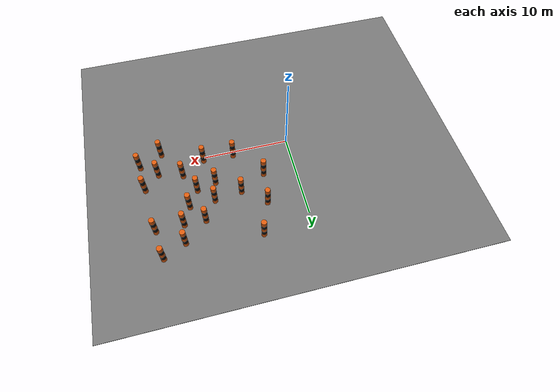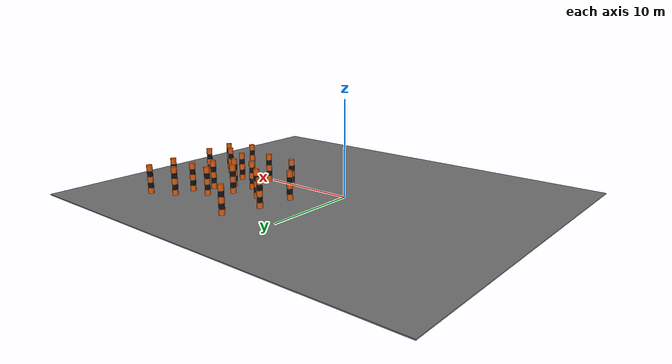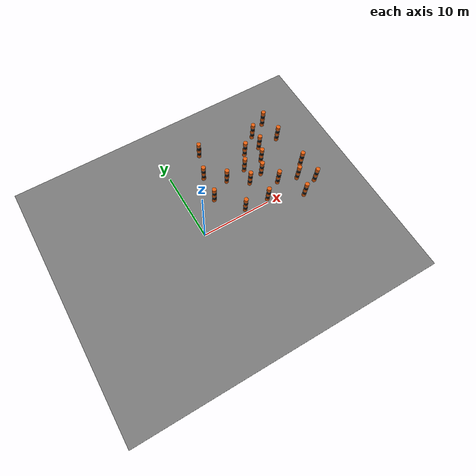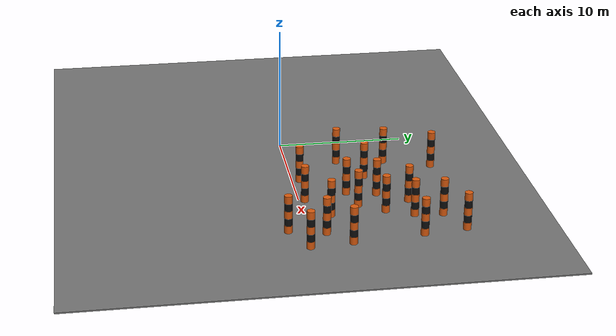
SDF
<sdf version="1.6">
 <world name="medium_forest_striped_poles_passable_0p10_per_m2">
  <model name="ground">
   <static>true</static>
   <pose>2 0 -0.05 0 0 0</pose>
   <link name="link">
    <collision name="collision">
     <geometry><box><size>44 37 0.1</size></box></geometry>
     <surface><friction><ode><mu>1.0</mu><mu2>1.0</mu2></ode></friction></surface>
    </collision>
    <visual name="visual">
     <geometry><box><size>44 37 0.1</size></box></geometry>
     <material>
      <ambient>0.45 0.45 0.45 1</ambient>
      <diffuse>0.45 0.45 0.45 1</diffuse>
      <specular>0.02 0.02 0.02 1</specular>
     </material>
    </visual>
   </link>
  </model>
  <model name="passable_striped_pole_003">
   <static>true</static>
   <pose>9.425 3.811 0 0 0 0</pose>
   <link name="link">
    <collision name="collision">
     <pose>0 0 1.5 0 0 0</pose>
     <geometry><cylinder><radius>0.30</radius><length>3.0</length></cylinder></geometry>
     <surface>
      <contact><ode><kp>1000000</kp><kd>100</kd><max_vel>0.01</max_vel><min_depth>0.001</min_depth></ode></contact>
      <friction><ode><mu>1.0</mu><mu2>1.0</mu2></ode></friction>
     </surface>
    </collision>
    <visual name="band_1">
     <pose>0 0 0.3 0 0 0</pose>
     <geometry><cylinder><radius>0.30</radius><length>0.6</length></cylinder></geometry>
     <material>
      <ambient>0.85 0.35 0.05 1</ambient>
      <diffuse>0.85 0.35 0.05 1</diffuse>
      <specular>0.02 0.02 0.02 1</specular>
     </material>
    </visual>
    <visual name="band_2">
     <pose>0 0 0.9 0 0 0</pose>
     <geometry><cylinder><radius>0.30</radius><length>0.6</length></cylinder></geometry>
     <material>
      <ambient>0.05 0.05 0.05 1</ambient>
      <diffuse>0.05 0.05 0.05 1</diffuse>
      <specular>0.02 0.02 0.02 1</specular>
     </material>
    </visual>
    <visual name="band_3">
     <pose>0 0 1.5 0 0 0</pose>
     <geometry><cylinder><radius>0.30</radius><length>0.6</length></cylinder></geometry>
     <material>
      <ambient>0.85 0.35 0.05 1</ambient>
      <diffuse>0.85 0.35 0.05 1</diffuse>
      <specular>0.02 0.02 0.02 1</specular>
     </material>
    </visual>
    <visual name="band_4">
     <pose>0 0 2.1 0 0 0</pose>
     <geometry><cylinder><radius>0.30</radius><length>0.6</length></cylinder></geometry>
     <material>
      <ambient>0.05 0.05 0.05 1</ambient>
      <diffuse>0.05 0.05 0.05 1</diffuse>
      <specular>0.02 0.02 0.02 1</specular>
     </material>
    </visual>
    <visual name="band_5">
     <pose>0 0 2.7 0 0 0</pose>
     <geometry><cylinder><radius>0.30</radius><length>0.6</length></cylinder></geometry>
     <material>
      <ambient>0.85 0.35 0.05 1</ambient>
      <diffuse>0.85 0.35 0.05 1</diffuse>
      <specular>0.02 0.02 0.02 1</specular>
     </material>
    </visual>
   </link>
  </model>
  <model name="passable_striped_pole_008">
   <static>true</static>
   <pose>6.706 0.597 0 0 0 0</pose>
   <link name="link">
    <collision name="collision">
     <pose>0 0 1.5 0 0 0</pose>
     <geometry><cylinder><radius>0.30</radius><length>3.0</length></cylinder></geometry>
     <surface>
      <contact><ode><kp>1000000</kp><kd>100</kd><max_vel>0.01</max_vel><min_depth>0.001</min_depth></ode></contact>
      <friction><ode><mu>1.0</mu><mu2>1.0</mu2></ode></friction>
     </surface>
    </collision>
    <visual name="band_1">
     <pose>0 0 0.3 0 0 0</pose>
     <geometry><cylinder><radius>0.30</radius><length>0.6</length></cylinder></geometry>
     <material>
      <ambient>0.85 0.35 0.05 1</ambient>
      <diffuse>0.85 0.35 0.05 1</diffuse>
      <specular>0.02 0.02 0.02 1</specular>
     </material>
    </visual>
    <visual name="band_2">
     <pose>0 0 0.9 0 0 0</pose>
     <geometry><cylinder><radius>0.30</radius><length>0.6</length></cylinder></geometry>
     <material>
      <ambient>0.05 0.05 0.05 1</ambient>
      <diffuse>0.05 0.05 0.05 1</diffuse>
      <specular>0.02 0.02 0.02 1</specular>
     </material>
    </visual>
    <visual name="band_3">
     <pose>0 0 1.5 0 0 0</pose>
     <geometry><cylinder><radius>0.30</radius><length>0.6</length></cylinder></geometry>
     <material>
      <ambient>0.85 0.35 0.05 1</ambient>
      <diffuse>0.85 0.35 0.05 1</diffuse>
      <specular>0.02 0.02 0.02 1</specular>
     </material>
    </visual>
    <visual name="band_4">
     <pose>0 0 2.1 0 0 0</pose>
     <geometry><cylinder><radius>0.30</radius><length>0.6</length></cylinder></geometry>
     <material>
      <ambient>0.05 0.05 0.05 1</ambient>
      <diffuse>0.05 0.05 0.05 1</diffuse>
      <specular>0.02 0.02 0.02 1</specular>
     </material>
    </visual>
    <visual name="band_5">
     <pose>0 0 2.7 0 0 0</pose>
     <geometry><cylinder><radius>0.30</radius><length>0.6</length></cylinder></geometry>
     <material>
      <ambient>0.85 0.35 0.05 1</ambient>
      <diffuse>0.85 0.35 0.05 1</diffuse>
      <specular>0.02 0.02 0.02 1</specular>
     </material>
    </visual>
   </link>
  </model>
  <model name="passable_striped_pole_010">
   <static>true</static>
   <pose>11.603 4.335 0 0 0 0</pose>
   <link name="link">
    <collision name="collision">
     <pose>0 0 1.5 0 0 0</pose>
     <geometry><cylinder><radius>0.30</radius><length>3.0</length></cylinder></geometry>
     <surface>
      <contact><ode><kp>1000000</kp><kd>100</kd><max_vel>0.01</max_vel><min_depth>0.001</min_depth></ode></contact>
      <friction><ode><mu>1.0</mu><mu2>1.0</mu2></ode></friction>
     </surface>
    </collision>
    <visual name="band_1">
     <pose>0 0 0.3 0 0 0</pose>
     <geometry><cylinder><radius>0.30</radius><length>0.6</length></cylinder></geometry>
     <material>
      <ambient>0.85 0.35 0.05 1</ambient>
      <diffuse>0.85 0.35 0.05 1</diffuse>
      <specular>0.02 0.02 0.02 1</specular>
     </material>
    </visual>
    <visual name="band_2">
     <pose>0 0 0.9 0 0 0</pose>
     <geometry><cylinder><radius>0.30</radius><length>0.6</length></cylinder></geometry>
     <material>
      <ambient>0.05 0.05 0.05 1</ambient>
      <diffuse>0.05 0.05 0.05 1</diffuse>
      <specular>0.02 0.02 0.02 1</specular>
     </material>
    </visual>
    <visual name="band_3">
     <pose>0 0 1.5 0 0 0</pose>
     <geometry><cylinder><radius>0.30</radius><length>0.6</length></cylinder></geometry>
     <material>
      <ambient>0.85 0.35 0.05 1</ambient>
      <diffuse>0.85 0.35 0.05 1</diffuse>
      <specular>0.02 0.02 0.02 1</specular>
     </material>
    </visual>
    <visual name="band_4">
     <pose>0 0 2.1 0 0 0</pose>
     <geometry><cylinder><radius>0.30</radius><length>0.6</length></cylinder></geometry>
     <material>
      <ambient>0.05 0.05 0.05 1</ambient>
      <diffuse>0.05 0.05 0.05 1</diffuse>
      <specular>0.02 0.02 0.02 1</specular>
     </material>
    </visual>
    <visual name="band_5">
     <pose>0 0 2.7 0 0 0</pose>
     <geometry><cylinder><radius>0.30</radius><length>0.6</length></cylinder></geometry>
     <material>
      <ambient>0.85 0.35 0.05 1</ambient>
      <diffuse>0.85 0.35 0.05 1</diffuse>
      <specular>0.02 0.02 0.02 1</specular>
     </material>
    </visual>
   </link>
  </model>
  <model name="passable_striped_pole_014">
   <static>true</static>
   <pose>12.911 2.031 0 0 0 0</pose>
   <link name="link">
    <collision name="collision">
     <pose>0 0 1.5 0 0 0</pose>
     <geometry><cylinder><radius>0.30</radius><length>3.0</length></cylinder></geometry>
     <surface>
      <contact><ode><kp>1000000</kp><kd>100</kd><max_vel>0.01</max_vel><min_depth>0.001</min_depth></ode></contact>
      <friction><ode><mu>1.0</mu><mu2>1.0</mu2></ode></friction>
     </surface>
    </collision>
    <visual name="band_1">
     <pose>0 0 0.3 0 0 0</pose>
     <geometry><cylinder><radius>0.30</radius><length>0.6</length></cylinder></geometry>
     <material>
      <ambient>0.85 0.35 0.05 1</ambient>
      <diffuse>0.85 0.35 0.05 1</diffuse>
      <specular>0.02 0.02 0.02 1</specular>
     </material>
    </visual>
    <visual name="band_2">
     <pose>0 0 0.9 0 0 0</pose>
     <geometry><cylinder><radius>0.30</radius><length>0.6</length></cylinder></geometry>
     <material>
      <ambient>0.05 0.05 0.05 1</ambient>
      <diffuse>0.05 0.05 0.05 1</diffuse>
      <specular>0.02 0.02 0.02 1</specular>
     </material>
    </visual>
    <visual name="band_3">
     <pose>0 0 1.5 0 0 0</pose>
     <geometry><cylinder><radius>0.30</radius><length>0.6</length></cylinder></geometry>
     <material>
      <ambient>0.85 0.35 0.05 1</ambient>
      <diffuse>0.85 0.35 0.05 1</diffuse>
      <specular>0.02 0.02 0.02 1</specular>
     </material>
    </visual>
    <visual name="band_4">
     <pose>0 0 2.1 0 0 0</pose>
     <geometry><cylinder><radius>0.30</radius><length>0.6</length></cylinder></geometry>
     <material>
      <ambient>0.05 0.05 0.05 1</ambient>
      <diffuse>0.05 0.05 0.05 1</diffuse>
      <specular>0.02 0.02 0.02 1</specular>
     </material>
    </visual>
    <visual name="band_5">
     <pose>0 0 2.7 0 0 0</pose>
     <geometry><cylinder><radius>0.30</radius><length>0.6</length></cylinder></geometry>
     <material>
      <ambient>0.85 0.35 0.05 1</ambient>
      <diffuse>0.85 0.35 0.05 1</diffuse>
      <specular>0.02 0.02 0.02 1</specular>
     </material>
    </visual>
   </link>
  </model>
  <model name="passable_striped_pole_023">
   <static>true</static>
   <pose>17.371 2.916 0 0 0 0</pose>
   <link name="link">
    <collision name="collision">
     <pose>0 0 1.5 0 0 0</pose>
     <geometry><cylinder><radius>0.30</radius><length>3.0</length></cylinder></geometry>
     <surface>
      <contact><ode><kp>1000000</kp><kd>100</kd><max_vel>0.01</max_vel><min_depth>0.001</min_depth></ode></contact>
      <friction><ode><mu>1.0</mu><mu2>1.0</mu2></ode></friction>
     </surface>
    </collision>
    <visual name="band_1">
     <pose>0 0 0.3 0 0 0</pose>
     <geometry><cylinder><radius>0.30</radius><length>0.6</length></cylinder></geometry>
     <material>
      <ambient>0.85 0.35 0.05 1</ambient>
      <diffuse>0.85 0.35 0.05 1</diffuse>
      <specular>0.02 0.02 0.02 1</specular>
     </material>
    </visual>
    <visual name="band_2">
     <pose>0 0 0.9 0 0 0</pose>
     <geometry><cylinder><radius>0.30</radius><length>0.6</length></cylinder></geometry>
     <material>
      <ambient>0.05 0.05 0.05 1</ambient>
      <diffuse>0.05 0.05 0.05 1</diffuse>
      <specular>0.02 0.02 0.02 1</specular>
     </material>
    </visual>
    <visual name="band_3">
     <pose>0 0 1.5 0 0 0</pose>
     <geometry><cylinder><radius>0.30</radius><length>0.6</length></cylinder></geometry>
     <material>
      <ambient>0.85 0.35 0.05 1</ambient>
      <diffuse>0.85 0.35 0.05 1</diffuse>
      <specular>0.02 0.02 0.02 1</specular>
     </material>
    </visual>
    <visual name="band_4">
     <pose>0 0 2.1 0 0 0</pose>
     <geometry><cylinder><radius>0.30</radius><length>0.6</length></cylinder></geometry>
     <material>
      <ambient>0.05 0.05 0.05 1</ambient>
      <diffuse>0.05 0.05 0.05 1</diffuse>
      <specular>0.02 0.02 0.02 1</specular>
     </material>
    </visual>
    <visual name="band_5">
     <pose>0 0 2.7 0 0 0</pose>
     <geometry><cylinder><radius>0.30</radius><length>0.6</length></cylinder></geometry>
     <material>
      <ambient>0.85 0.35 0.05 1</ambient>
      <diffuse>0.85 0.35 0.05 1</diffuse>
      <specular>0.02 0.02 0.02 1</specular>
     </material>
    </visual>
   </link>
  </model>
  <model name="passable_striped_pole_024">
   <static>true</static>
   <pose>3.788 4.005 0 0 0 0</pose>
   <link name="link">
    <collision name="collision">
     <pose>0 0 1.5 0 0 0</pose>
     <geometry><cylinder><radius>0.30</radius><length>3.0</length></cylinder></geometry>
     <surface>
      <contact><ode><kp>1000000</kp><kd>100</kd><max_vel>0.01</max_vel><min_depth>0.001</min_depth></ode></contact>
      <friction><ode><mu>1.0</mu><mu2>1.0</mu2></ode></friction>
     </surface>
    </collision>
    <visual name="band_1">
     <pose>0 0 0.3 0 0 0</pose>
     <geometry><cylinder><radius>0.30</radius><length>0.6</length></cylinder></geometry>
     <material>
      <ambient>0.85 0.35 0.05 1</ambient>
      <diffuse>0.85 0.35 0.05 1</diffuse>
      <specular>0.02 0.02 0.02 1</specular>
     </material>
    </visual>
    <visual name="band_2">
     <pose>0 0 0.9 0 0 0</pose>
     <geometry><cylinder><radius>0.30</radius><length>0.6</length></cylinder></geometry>
     <material>
      <ambient>0.05 0.05 0.05 1</ambient>
      <diffuse>0.05 0.05 0.05 1</diffuse>
      <specular>0.02 0.02 0.02 1</specular>
     </material>
    </visual>
    <visual name="band_3">
     <pose>0 0 1.5 0 0 0</pose>
     <geometry><cylinder><radius>0.30</radius><length>0.6</length></cylinder></geometry>
     <material>
      <ambient>0.85 0.35 0.05 1</ambient>
      <diffuse>0.85 0.35 0.05 1</diffuse>
      <specular>0.02 0.02 0.02 1</specular>
     </material>
    </visual>
    <visual name="band_4">
     <pose>0 0 2.1 0 0 0</pose>
     <geometry><cylinder><radius>0.30</radius><length>0.6</length></cylinder></geometry>
     <material>
      <ambient>0.05 0.05 0.05 1</ambient>
      <diffuse>0.05 0.05 0.05 1</diffuse>
      <specular>0.02 0.02 0.02 1</specular>
     </material>
    </visual>
    <visual name="band_5">
     <pose>0 0 2.7 0 0 0</pose>
     <geometry><cylinder><radius>0.30</radius><length>0.6</length></cylinder></geometry>
     <material>
      <ambient>0.85 0.35 0.05 1</ambient>
      <diffuse>0.85 0.35 0.05 1</diffuse>
      <specular>0.02 0.02 0.02 1</specular>
     </material>
    </visual>
   </link>
  </model>
  <model name="passable_striped_pole_025">
   <static>true</static>
   <pose>12.766 6.234 0 0 0 0</pose>
   <link name="link">
    <collision name="collision">
     <pose>0 0 1.5 0 0 0</pose>
     <geometry><cylinder><radius>0.30</radius><length>3.0</length></cylinder></geometry>
     <surface>
      <contact><ode><kp>1000000</kp><kd>100</kd><max_vel>0.01</max_vel><min_depth>0.001</min_depth></ode></contact>
      <friction><ode><mu>1.0</mu><mu2>1.0</mu2></ode></friction>
     </surface>
    </collision>
    <visual name="band_1">
     <pose>0 0 0.3 0 0 0</pose>
     <geometry><cylinder><radius>0.30</radius><length>0.6</length></cylinder></geometry>
     <material>
      <ambient>0.85 0.35 0.05 1</ambient>
      <diffuse>0.85 0.35 0.05 1</diffuse>
      <specular>0.02 0.02 0.02 1</specular>
     </material>
    </visual>
    <visual name="band_2">
     <pose>0 0 0.9 0 0 0</pose>
     <geometry><cylinder><radius>0.30</radius><length>0.6</length></cylinder></geometry>
     <material>
      <ambient>0.05 0.05 0.05 1</ambient>
      <diffuse>0.05 0.05 0.05 1</diffuse>
      <specular>0.02 0.02 0.02 1</specular>
     </material>
    </visual>
    <visual name="band_3">
     <pose>0 0 1.5 0 0 0</pose>
     <geometry><cylinder><radius>0.30</radius><length>0.6</length></cylinder></geometry>
     <material>
      <ambient>0.85 0.35 0.05 1</ambient>
      <diffuse>0.85 0.35 0.05 1</diffuse>
      <specular>0.02 0.02 0.02 1</specular>
     </material>
    </visual>
    <visual name="band_4">
     <pose>0 0 2.1 0 0 0</pose>
     <geometry><cylinder><radius>0.30</radius><length>0.6</length></cylinder></geometry>
     <material>
      <ambient>0.05 0.05 0.05 1</ambient>
      <diffuse>0.05 0.05 0.05 1</diffuse>
      <specular>0.02 0.02 0.02 1</specular>
     </material>
    </visual>
    <visual name="band_5">
     <pose>0 0 2.7 0 0 0</pose>
     <geometry><cylinder><radius>0.30</radius><length>0.6</length></cylinder></geometry>
     <material>
      <ambient>0.85 0.35 0.05 1</ambient>
      <diffuse>0.85 0.35 0.05 1</diffuse>
      <specular>0.02 0.02 0.02 1</specular>
     </material>
    </visual>
   </link>
  </model>
  <model name="passable_striped_pole_028">
   <static>true</static>
   <pose>15.017 -1.504 0 0 0 0</pose>
   <link name="link">
    <collision name="collision">
     <pose>0 0 1.5 0 0 0</pose>
     <geometry><cylinder><radius>0.30</radius><length>3.0</length></cylinder></geometry>
     <surface>
      <contact><ode><kp>1000000</kp><kd>100</kd><max_vel>0.01</max_vel><min_depth>0.001</min_depth></ode></contact>
      <friction><ode><mu>1.0</mu><mu2>1.0</mu2></ode></friction>
     </surface>
    </collision>
    <visual name="band_1">
     <pose>0 0 0.3 0 0 0</pose>
     <geometry><cylinder><radius>0.30</radius><length>0.6</length></cylinder></geometry>
     <material>
      <ambient>0.85 0.35 0.05 1</ambient>
      <diffuse>0.85 0.35 0.05 1</diffuse>
      <specular>0.02 0.02 0.02 1</specular>
     </material>
    </visual>
    <visual name="band_2">
     <pose>0 0 0.9 0 0 0</pose>
     <geometry><cylinder><radius>0.30</radius><length>0.6</length></cylinder></geometry>
     <material>
      <ambient>0.05 0.05 0.05 1</ambient>
      <diffuse>0.05 0.05 0.05 1</diffuse>
      <specular>0.02 0.02 0.02 1</specular>
     </material>
    </visual>
    <visual name="band_3">
     <pose>0 0 1.5 0 0 0</pose>
     <geometry><cylinder><radius>0.30</radius><length>0.6</length></cylinder></geometry>
     <material>
      <ambient>0.85 0.35 0.05 1</ambient>
      <diffuse>0.85 0.35 0.05 1</diffuse>
      <specular>0.02 0.02 0.02 1</specular>
     </material>
    </visual>
    <visual name="band_4">
     <pose>0 0 2.1 0 0 0</pose>
     <geometry><cylinder><radius>0.30</radius><length>0.6</length></cylinder></geometry>
     <material>
      <ambient>0.05 0.05 0.05 1</ambient>
      <diffuse>0.05 0.05 0.05 1</diffuse>
      <specular>0.02 0.02 0.02 1</specular>
     </material>
    </visual>
    <visual name="band_5">
     <pose>0 0 2.7 0 0 0</pose>
     <geometry><cylinder><radius>0.30</radius><length>0.6</length></cylinder></geometry>
     <material>
      <ambient>0.85 0.35 0.05 1</ambient>
      <diffuse>0.85 0.35 0.05 1</diffuse>
      <specular>0.02 0.02 0.02 1</specular>
     </material>
    </visual>
   </link>
  </model>
  <model name="passable_striped_pole_031">
   <static>true</static>
   <pose>17.623 -0.268 0 0 0 0</pose>
   <link name="link">
    <collision name="collision">
     <pose>0 0 1.5 0 0 0</pose>
     <geometry><cylinder><radius>0.30</radius><length>3.0</length></cylinder></geometry>
     <surface>
      <contact><ode><kp>1000000</kp><kd>100</kd><max_vel>0.01</max_vel><min_depth>0.001</min_depth></ode></contact>
      <friction><ode><mu>1.0</mu><mu2>1.0</mu2></ode></friction>
     </surface>
    </collision>
    <visual name="band_1">
     <pose>0 0 0.3 0 0 0</pose>
     <geometry><cylinder><radius>0.30</radius><length>0.6</length></cylinder></geometry>
     <material>
      <ambient>0.85 0.35 0.05 1</ambient>
      <diffuse>0.85 0.35 0.05 1</diffuse>
      <specular>0.02 0.02 0.02 1</specular>
     </material>
    </visual>
    <visual name="band_2">
     <pose>0 0 0.9 0 0 0</pose>
     <geometry><cylinder><radius>0.30</radius><length>0.6</length></cylinder></geometry>
     <material>
      <ambient>0.05 0.05 0.05 1</ambient>
      <diffuse>0.05 0.05 0.05 1</diffuse>
      <specular>0.02 0.02 0.02 1</specular>
     </material>
    </visual>
    <visual name="band_3">
     <pose>0 0 1.5 0 0 0</pose>
     <geometry><cylinder><radius>0.30</radius><length>0.6</length></cylinder></geometry>
     <material>
      <ambient>0.85 0.35 0.05 1</ambient>
      <diffuse>0.85 0.35 0.05 1</diffuse>
      <specular>0.02 0.02 0.02 1</specular>
     </material>
    </visual>
    <visual name="band_4">
     <pose>0 0 2.1 0 0 0</pose>
     <geometry><cylinder><radius>0.30</radius><length>0.6</length></cylinder></geometry>
     <material>
      <ambient>0.05 0.05 0.05 1</ambient>
      <diffuse>0.05 0.05 0.05 1</diffuse>
      <specular>0.02 0.02 0.02 1</specular>
     </material>
    </visual>
    <visual name="band_5">
     <pose>0 0 2.7 0 0 0</pose>
     <geometry><cylinder><radius>0.30</radius><length>0.6</length></cylinder></geometry>
     <material>
      <ambient>0.85 0.35 0.05 1</ambient>
      <diffuse>0.85 0.35 0.05 1</diffuse>
      <specular>0.02 0.02 0.02 1</specular>
     </material>
    </visual>
   </link>
  </model>
  <model name="passable_striped_pole_034">
   <static>true</static>
   <pose>16.792 8.303 0 0 0 0</pose>
   <link name="link">
    <collision name="collision">
     <pose>0 0 1.5 0 0 0</pose>
     <geometry><cylinder><radius>0.30</radius><length>3.0</length></cylinder></geometry>
     <surface>
      <contact><ode><kp>1000000</kp><kd>100</kd><max_vel>0.01</max_vel><min_depth>0.001</min_depth></ode></contact>
      <friction><ode><mu>1.0</mu><mu2>1.0</mu2></ode></friction>
     </surface>
    </collision>
    <visual name="band_1">
     <pose>0 0 0.3 0 0 0</pose>
     <geometry><cylinder><radius>0.30</radius><length>0.6</length></cylinder></geometry>
     <material>
      <ambient>0.85 0.35 0.05 1</ambient>
      <diffuse>0.85 0.35 0.05 1</diffuse>
      <specular>0.02 0.02 0.02 1</specular>
     </material>
    </visual>
    <visual name="band_2">
     <pose>0 0 0.9 0 0 0</pose>
     <geometry><cylinder><radius>0.30</radius><length>0.6</length></cylinder></geometry>
     <material>
      <ambient>0.05 0.05 0.05 1</ambient>
      <diffuse>0.05 0.05 0.05 1</diffuse>
      <specular>0.02 0.02 0.02 1</specular>
     </material>
    </visual>
    <visual name="band_3">
     <pose>0 0 1.5 0 0 0</pose>
     <geometry><cylinder><radius>0.30</radius><length>0.6</length></cylinder></geometry>
     <material>
      <ambient>0.85 0.35 0.05 1</ambient>
      <diffuse>0.85 0.35 0.05 1</diffuse>
      <specular>0.02 0.02 0.02 1</specular>
     </material>
    </visual>
    <visual name="band_4">
     <pose>0 0 2.1 0 0 0</pose>
     <geometry><cylinder><radius>0.30</radius><length>0.6</length></cylinder></geometry>
     <material>
      <ambient>0.05 0.05 0.05 1</ambient>
      <diffuse>0.05 0.05 0.05 1</diffuse>
      <specular>0.02 0.02 0.02 1</specular>
     </material>
    </visual>
    <visual name="band_5">
     <pose>0 0 2.7 0 0 0</pose>
     <geometry><cylinder><radius>0.30</radius><length>0.6</length></cylinder></geometry>
     <material>
      <ambient>0.85 0.35 0.05 1</ambient>
      <diffuse>0.85 0.35 0.05 1</diffuse>
      <specular>0.02 0.02 0.02 1</specular>
     </material>
    </visual>
   </link>
  </model>
  <model name="passable_striped_pole_039">
   <static>true</static>
   <pose>10.243 0.461 0 0 0 0</pose>
   <link name="link">
    <collision name="collision">
     <pose>0 0 1.5 0 0 0</pose>
     <geometry><cylinder><radius>0.30</radius><length>3.0</length></cylinder></geometry>
     <surface>
      <contact><ode><kp>1000000</kp><kd>100</kd><max_vel>0.01</max_vel><min_depth>0.001</min_depth></ode></contact>
      <friction><ode><mu>1.0</mu><mu2>1.0</mu2></ode></friction>
     </surface>
    </collision>
    <visual name="band_1">
     <pose>0 0 0.3 0 0 0</pose>
     <geometry><cylinder><radius>0.30</radius><length>0.6</length></cylinder></geometry>
     <material>
      <ambient>0.85 0.35 0.05 1</ambient>
      <diffuse>0.85 0.35 0.05 1</diffuse>
      <specular>0.02 0.02 0.02 1</specular>
     </material>
    </visual>
    <visual name="band_2">
     <pose>0 0 0.9 0 0 0</pose>
     <geometry><cylinder><radius>0.30</radius><length>0.6</length></cylinder></geometry>
     <material>
      <ambient>0.05 0.05 0.05 1</ambient>
      <diffuse>0.05 0.05 0.05 1</diffuse>
      <specular>0.02 0.02 0.02 1</specular>
     </material>
    </visual>
    <visual name="band_3">
     <pose>0 0 1.5 0 0 0</pose>
     <geometry><cylinder><radius>0.30</radius><length>0.6</length></cylinder></geometry>
     <material>
      <ambient>0.85 0.35 0.05 1</ambient>
      <diffuse>0.85 0.35 0.05 1</diffuse>
      <specular>0.02 0.02 0.02 1</specular>
     </material>
    </visual>
    <visual name="band_4">
     <pose>0 0 2.1 0 0 0</pose>
     <geometry><cylinder><radius>0.30</radius><length>0.6</length></cylinder></geometry>
     <material>
      <ambient>0.05 0.05 0.05 1</ambient>
      <diffuse>0.05 0.05 0.05 1</diffuse>
      <specular>0.02 0.02 0.02 1</specular>
     </material>
    </visual>
    <visual name="band_5">
     <pose>0 0 2.7 0 0 0</pose>
     <geometry><cylinder><radius>0.30</radius><length>0.6</length></cylinder></geometry>
     <material>
      <ambient>0.85 0.35 0.05 1</ambient>
      <diffuse>0.85 0.35 0.05 1</diffuse>
      <specular>0.02 0.02 0.02 1</specular>
     </material>
    </visual>
   </link>
  </model>
  <model name="passable_striped_pole_043">
   <static>true</static>
   <pose>13.870 10.406 0 0 0 0</pose>
   <link name="link">
    <collision name="collision">
     <pose>0 0 1.5 0 0 0</pose>
     <geometry><cylinder><radius>0.30</radius><length>3.0</length></cylinder></geometry>
     <surface>
      <contact><ode><kp>1000000</kp><kd>100</kd><max_vel>0.01</max_vel><min_depth>0.001</min_depth></ode></contact>
      <friction><ode><mu>1.0</mu><mu2>1.0</mu2></ode></friction>
     </surface>
    </collision>
    <visual name="band_1">
     <pose>0 0 0.3 0 0 0</pose>
     <geometry><cylinder><radius>0.30</radius><length>0.6</length></cylinder></geometry>
     <material>
      <ambient>0.85 0.35 0.05 1</ambient>
      <diffuse>0.85 0.35 0.05 1</diffuse>
      <specular>0.02 0.02 0.02 1</specular>
     </material>
    </visual>
    <visual name="band_2">
     <pose>0 0 0.9 0 0 0</pose>
     <geometry><cylinder><radius>0.30</radius><length>0.6</length></cylinder></geometry>
     <material>
      <ambient>0.05 0.05 0.05 1</ambient>
      <diffuse>0.05 0.05 0.05 1</diffuse>
      <specular>0.02 0.02 0.02 1</specular>
     </material>
    </visual>
    <visual name="band_3">
     <pose>0 0 1.5 0 0 0</pose>
     <geometry><cylinder><radius>0.30</radius><length>0.6</length></cylinder></geometry>
     <material>
      <ambient>0.85 0.35 0.05 1</ambient>
      <diffuse>0.85 0.35 0.05 1</diffuse>
      <specular>0.02 0.02 0.02 1</specular>
     </material>
    </visual>
    <visual name="band_4">
     <pose>0 0 2.1 0 0 0</pose>
     <geometry><cylinder><radius>0.30</radius><length>0.6</length></cylinder></geometry>
     <material>
      <ambient>0.05 0.05 0.05 1</ambient>
      <diffuse>0.05 0.05 0.05 1</diffuse>
      <specular>0.02 0.02 0.02 1</specular>
     </material>
    </visual>
    <visual name="band_5">
     <pose>0 0 2.7 0 0 0</pose>
     <geometry><cylinder><radius>0.30</radius><length>0.6</length></cylinder></geometry>
     <material>
      <ambient>0.85 0.35 0.05 1</ambient>
      <diffuse>0.85 0.35 0.05 1</diffuse>
      <specular>0.02 0.02 0.02 1</specular>
     </material>
    </visual>
   </link>
  </model>
  <model name="passable_striped_pole_047">
   <static>true</static>
   <pose>15.675 1.233 0 0 0 0</pose>
   <link name="link">
    <collision name="collision">
     <pose>0 0 1.5 0 0 0</pose>
     <geometry><cylinder><radius>0.30</radius><length>3.0</length></cylinder></geometry>
     <surface>
      <contact><ode><kp>1000000</kp><kd>100</kd><max_vel>0.01</max_vel><min_depth>0.001</min_depth></ode></contact>
      <friction><ode><mu>1.0</mu><mu2>1.0</mu2></ode></friction>
     </surface>
    </collision>
    <visual name="band_1">
     <pose>0 0 0.3 0 0 0</pose>
     <geometry><cylinder><radius>0.30</radius><length>0.6</length></cylinder></geometry>
     <material>
      <ambient>0.85 0.35 0.05 1</ambient>
      <diffuse>0.85 0.35 0.05 1</diffuse>
      <specular>0.02 0.02 0.02 1</specular>
     </material>
    </visual>
    <visual name="band_2">
     <pose>0 0 0.9 0 0 0</pose>
     <geometry><cylinder><radius>0.30</radius><length>0.6</length></cylinder></geometry>
     <material>
      <ambient>0.05 0.05 0.05 1</ambient>
      <diffuse>0.05 0.05 0.05 1</diffuse>
      <specular>0.02 0.02 0.02 1</specular>
     </material>
    </visual>
    <visual name="band_3">
     <pose>0 0 1.5 0 0 0</pose>
     <geometry><cylinder><radius>0.30</radius><length>0.6</length></cylinder></geometry>
     <material>
      <ambient>0.85 0.35 0.05 1</ambient>
      <diffuse>0.85 0.35 0.05 1</diffuse>
      <specular>0.02 0.02 0.02 1</specular>
     </material>
    </visual>
    <visual name="band_4">
     <pose>0 0 2.1 0 0 0</pose>
     <geometry><cylinder><radius>0.30</radius><length>0.6</length></cylinder></geometry>
     <material>
      <ambient>0.05 0.05 0.05 1</ambient>
      <diffuse>0.05 0.05 0.05 1</diffuse>
      <specular>0.02 0.02 0.02 1</specular>
     </material>
    </visual>
    <visual name="band_5">
     <pose>0 0 2.7 0 0 0</pose>
     <geometry><cylinder><radius>0.30</radius><length>0.6</length></cylinder></geometry>
     <material>
      <ambient>0.85 0.35 0.05 1</ambient>
      <diffuse>0.85 0.35 0.05 1</diffuse>
      <specular>0.02 0.02 0.02 1</specular>
     </material>
    </visual>
   </link>
  </model>
  <model name="passable_striped_pole_055">
   <static>true</static>
   <pose>16.360 11.588 0 0 0 0</pose>
   <link name="link">
    <collision name="collision">
     <pose>0 0 1.5 0 0 0</pose>
     <geometry><cylinder><radius>0.30</radius><length>3.0</length></cylinder></geometry>
     <surface>
      <contact><ode><kp>1000000</kp><kd>100</kd><max_vel>0.01</max_vel><min_depth>0.001</min_depth></ode></contact>
      <friction><ode><mu>1.0</mu><mu2>1.0</mu2></ode></friction>
     </surface>
    </collision>
    <visual name="band_1">
     <pose>0 0 0.3 0 0 0</pose>
     <geometry><cylinder><radius>0.30</radius><length>0.6</length></cylinder></geometry>
     <material>
      <ambient>0.85 0.35 0.05 1</ambient>
      <diffuse>0.85 0.35 0.05 1</diffuse>
      <specular>0.02 0.02 0.02 1</specular>
     </material>
    </visual>
    <visual name="band_2">
     <pose>0 0 0.9 0 0 0</pose>
     <geometry><cylinder><radius>0.30</radius><length>0.6</length></cylinder></geometry>
     <material>
      <ambient>0.05 0.05 0.05 1</ambient>
      <diffuse>0.05 0.05 0.05 1</diffuse>
      <specular>0.02 0.02 0.02 1</specular>
     </material>
    </visual>
    <visual name="band_3">
     <pose>0 0 1.5 0 0 0</pose>
     <geometry><cylinder><radius>0.30</radius><length>0.6</length></cylinder></geometry>
     <material>
      <ambient>0.85 0.35 0.05 1</ambient>
      <diffuse>0.85 0.35 0.05 1</diffuse>
      <specular>0.02 0.02 0.02 1</specular>
     </material>
    </visual>
    <visual name="band_4">
     <pose>0 0 2.1 0 0 0</pose>
     <geometry><cylinder><radius>0.30</radius><length>0.6</length></cylinder></geometry>
     <material>
      <ambient>0.05 0.05 0.05 1</ambient>
      <diffuse>0.05 0.05 0.05 1</diffuse>
      <specular>0.02 0.02 0.02 1</specular>
     </material>
    </visual>
    <visual name="band_5">
     <pose>0 0 2.7 0 0 0</pose>
     <geometry><cylinder><radius>0.30</radius><length>0.6</length></cylinder></geometry>
     <material>
      <ambient>0.85 0.35 0.05 1</ambient>
      <diffuse>0.85 0.35 0.05 1</diffuse>
      <specular>0.02 0.02 0.02 1</specular>
     </material>
    </visual>
   </link>
  </model>
  <model name="passable_striped_pole_058">
   <static>true</static>
   <pose>5.507 11.388 0 0 0 0</pose>
   <link name="link">
    <collision name="collision">
     <pose>0 0 1.5 0 0 0</pose>
     <geometry><cylinder><radius>0.30</radius><length>3.0</length></cylinder></geometry>
     <surface>
      <contact><ode><kp>1000000</kp><kd>100</kd><max_vel>0.01</max_vel><min_depth>0.001</min_depth></ode></contact>
      <friction><ode><mu>1.0</mu><mu2>1.0</mu2></ode></friction>
     </surface>
    </collision>
    <visual name="band_1">
     <pose>0 0 0.3 0 0 0</pose>
     <geometry><cylinder><radius>0.30</radius><length>0.6</length></cylinder></geometry>
     <material>
      <ambient>0.85 0.35 0.05 1</ambient>
      <diffuse>0.85 0.35 0.05 1</diffuse>
      <specular>0.02 0.02 0.02 1</specular>
     </material>
    </visual>
    <visual name="band_2">
     <pose>0 0 0.9 0 0 0</pose>
     <geometry><cylinder><radius>0.30</radius><length>0.6</length></cylinder></geometry>
     <material>
      <ambient>0.05 0.05 0.05 1</ambient>
      <diffuse>0.05 0.05 0.05 1</diffuse>
      <specular>0.02 0.02 0.02 1</specular>
     </material>
    </visual>
    <visual name="band_3">
     <pose>0 0 1.5 0 0 0</pose>
     <geometry><cylinder><radius>0.30</radius><length>0.6</length></cylinder></geometry>
     <material>
      <ambient>0.85 0.35 0.05 1</ambient>
      <diffuse>0.85 0.35 0.05 1</diffuse>
      <specular>0.02 0.02 0.02 1</specular>
     </material>
    </visual>
    <visual name="band_4">
     <pose>0 0 2.1 0 0 0</pose>
     <geometry><cylinder><radius>0.30</radius><length>0.6</length></cylinder></geometry>
     <material>
      <ambient>0.05 0.05 0.05 1</ambient>
      <diffuse>0.05 0.05 0.05 1</diffuse>
      <specular>0.02 0.02 0.02 1</specular>
     </material>
    </visual>
    <visual name="band_5">
     <pose>0 0 2.7 0 0 0</pose>
     <geometry><cylinder><radius>0.30</radius><length>0.6</length></cylinder></geometry>
     <material>
      <ambient>0.85 0.35 0.05 1</ambient>
      <diffuse>0.85 0.35 0.05 1</diffuse>
      <specular>0.02 0.02 0.02 1</specular>
     </material>
    </visual>
   </link>
  </model>
  <model name="passable_striped_pole_061">
   <static>true</static>
   <pose>11.298 8.301 0 0 0 0</pose>
   <link name="link">
    <collision name="collision">
     <pose>0 0 1.5 0 0 0</pose>
     <geometry><cylinder><radius>0.30</radius><length>3.0</length></cylinder></geometry>
     <surface>
      <contact><ode><kp>1000000</kp><kd>100</kd><max_vel>0.01</max_vel><min_depth>0.001</min_depth></ode></contact>
      <friction><ode><mu>1.0</mu><mu2>1.0</mu2></ode></friction>
     </surface>
    </collision>
    <visual name="band_1">
     <pose>0 0 0.3 0 0 0</pose>
     <geometry><cylinder><radius>0.30</radius><length>0.6</length></cylinder></geometry>
     <material>
      <ambient>0.85 0.35 0.05 1</ambient>
      <diffuse>0.85 0.35 0.05 1</diffuse>
      <specular>0.02 0.02 0.02 1</specular>
     </material>
    </visual>
    <visual name="band_2">
     <pose>0 0 0.9 0 0 0</pose>
     <geometry><cylinder><radius>0.30</radius><length>0.6</length></cylinder></geometry>
     <material>
      <ambient>0.05 0.05 0.05 1</ambient>
      <diffuse>0.05 0.05 0.05 1</diffuse>
      <specular>0.02 0.02 0.02 1</specular>
     </material>
    </visual>
    <visual name="band_3">
     <pose>0 0 1.5 0 0 0</pose>
     <geometry><cylinder><radius>0.30</radius><length>0.6</length></cylinder></geometry>
     <material>
      <ambient>0.85 0.35 0.05 1</ambient>
      <diffuse>0.85 0.35 0.05 1</diffuse>
      <specular>0.02 0.02 0.02 1</specular>
     </material>
    </visual>
    <visual name="band_4">
     <pose>0 0 2.1 0 0 0</pose>
     <geometry><cylinder><radius>0.30</radius><length>0.6</length></cylinder></geometry>
     <material>
      <ambient>0.05 0.05 0.05 1</ambient>
      <diffuse>0.05 0.05 0.05 1</diffuse>
      <specular>0.02 0.02 0.02 1</specular>
     </material>
    </visual>
    <visual name="band_5">
     <pose>0 0 2.7 0 0 0</pose>
     <geometry><cylinder><radius>0.30</radius><length>0.6</length></cylinder></geometry>
     <material>
      <ambient>0.85 0.35 0.05 1</ambient>
      <diffuse>0.85 0.35 0.05 1</diffuse>
      <specular>0.02 0.02 0.02 1</specular>
     </material>
    </visual>
   </link>
  </model>
  <model name="passable_striped_pole_063">
   <static>true</static>
   <pose>13.686 8.250 0 0 0 0</pose>
   <link name="link">
    <collision name="collision">
     <pose>0 0 1.5 0 0 0</pose>
     <geometry><cylinder><radius>0.30</radius><length>3.0</length></cylinder></geometry>
     <surface>
      <contact><ode><kp>1000000</kp><kd>100</kd><max_vel>0.01</max_vel><min_depth>0.001</min_depth></ode></contact>
      <friction><ode><mu>1.0</mu><mu2>1.0</mu2></ode></friction>
     </surface>
    </collision>
    <visual name="band_1">
     <pose>0 0 0.3 0 0 0</pose>
     <geometry><cylinder><radius>0.30</radius><length>0.6</length></cylinder></geometry>
     <material>
      <ambient>0.85 0.35 0.05 1</ambient>
      <diffuse>0.85 0.35 0.05 1</diffuse>
      <specular>0.02 0.02 0.02 1</specular>
     </material>
    </visual>
    <visual name="band_2">
     <pose>0 0 0.9 0 0 0</pose>
     <geometry><cylinder><radius>0.30</radius><length>0.6</length></cylinder></geometry>
     <material>
      <ambient>0.05 0.05 0.05 1</ambient>
      <diffuse>0.05 0.05 0.05 1</diffuse>
      <specular>0.02 0.02 0.02 1</specular>
     </material>
    </visual>
    <visual name="band_3">
     <pose>0 0 1.5 0 0 0</pose>
     <geometry><cylinder><radius>0.30</radius><length>0.6</length></cylinder></geometry>
     <material>
      <ambient>0.85 0.35 0.05 1</ambient>
      <diffuse>0.85 0.35 0.05 1</diffuse>
      <specular>0.02 0.02 0.02 1</specular>
     </material>
    </visual>
    <visual name="band_4">
     <pose>0 0 2.1 0 0 0</pose>
     <geometry><cylinder><radius>0.30</radius><length>0.6</length></cylinder></geometry>
     <material>
      <ambient>0.05 0.05 0.05 1</ambient>
      <diffuse>0.05 0.05 0.05 1</diffuse>
      <specular>0.02 0.02 0.02 1</specular>
     </material>
    </visual>
    <visual name="band_5">
     <pose>0 0 2.7 0 0 0</pose>
     <geometry><cylinder><radius>0.30</radius><length>0.6</length></cylinder></geometry>
     <material>
      <ambient>0.85 0.35 0.05 1</ambient>
      <diffuse>0.85 0.35 0.05 1</diffuse>
      <specular>0.02 0.02 0.02 1</specular>
     </material>
    </visual>
   </link>
  </model>
  <model name="passable_striped_pole_068">
   <static>true</static>
   <pose>9.880 6.089 0 0 0 0</pose>
   <link name="link">
    <collision name="collision">
     <pose>0 0 1.5 0 0 0</pose>
     <geometry><cylinder><radius>0.30</radius><length>3.0</length></cylinder></geometry>
     <surface>
      <contact><ode><kp>1000000</kp><kd>100</kd><max_vel>0.01</max_vel><min_depth>0.001</min_depth></ode></contact>
      <friction><ode><mu>1.0</mu><mu2>1.0</mu2></ode></friction>
     </surface>
    </collision>
    <visual name="band_1">
     <pose>0 0 0.3 0 0 0</pose>
     <geometry><cylinder><radius>0.30</radius><length>0.6</length></cylinder></geometry>
     <material>
      <ambient>0.85 0.35 0.05 1</ambient>
      <diffuse>0.85 0.35 0.05 1</diffuse>
      <specular>0.02 0.02 0.02 1</specular>
     </material>
    </visual>
    <visual name="band_2">
     <pose>0 0 0.9 0 0 0</pose>
     <geometry><cylinder><radius>0.30</radius><length>0.6</length></cylinder></geometry>
     <material>
      <ambient>0.05 0.05 0.05 1</ambient>
      <diffuse>0.05 0.05 0.05 1</diffuse>
      <specular>0.02 0.02 0.02 1</specular>
     </material>
    </visual>
    <visual name="band_3">
     <pose>0 0 1.5 0 0 0</pose>
     <geometry><cylinder><radius>0.30</radius><length>0.6</length></cylinder></geometry>
     <material>
      <ambient>0.85 0.35 0.05 1</ambient>
      <diffuse>0.85 0.35 0.05 1</diffuse>
      <specular>0.02 0.02 0.02 1</specular>
     </material>
    </visual>
    <visual name="band_4">
     <pose>0 0 2.1 0 0 0</pose>
     <geometry><cylinder><radius>0.30</radius><length>0.6</length></cylinder></geometry>
     <material>
      <ambient>0.05 0.05 0.05 1</ambient>
      <diffuse>0.05 0.05 0.05 1</diffuse>
      <specular>0.02 0.02 0.02 1</specular>
     </material>
    </visual>
    <visual name="band_5">
     <pose>0 0 2.7 0 0 0</pose>
     <geometry><cylinder><radius>0.30</radius><length>0.6</length></cylinder></geometry>
     <material>
      <ambient>0.85 0.35 0.05 1</ambient>
      <diffuse>0.85 0.35 0.05 1</diffuse>
      <specular>0.02 0.02 0.02 1</specular>
     </material>
    </visual>
   </link>
  </model>
  <model name="passable_striped_pole_070">
   <static>true</static>
   <pose>6.765 5.703 0 0 0 0</pose>
   <link name="link">
    <collision name="collision">
     <pose>0 0 1.5 0 0 0</pose>
     <geometry><cylinder><radius>0.30</radius><length>3.0</length></cylinder></geometry>
     <surface>
      <contact><ode><kp>1000000</kp><kd>100</kd><max_vel>0.01</max_vel><min_depth>0.001</min_depth></ode></contact>
      <friction><ode><mu>1.0</mu><mu2>1.0</mu2></ode></friction>
     </surface>
    </collision>
    <visual name="band_1">
     <pose>0 0 0.3 0 0 0</pose>
     <geometry><cylinder><radius>0.30</radius><length>0.6</length></cylinder></geometry>
     <material>
      <ambient>0.85 0.35 0.05 1</ambient>
      <diffuse>0.85 0.35 0.05 1</diffuse>
      <specular>0.02 0.02 0.02 1</specular>
     </material>
    </visual>
    <visual name="band_2">
     <pose>0 0 0.9 0 0 0</pose>
     <geometry><cylinder><radius>0.30</radius><length>0.6</length></cylinder></geometry>
     <material>
      <ambient>0.05 0.05 0.05 1</ambient>
      <diffuse>0.05 0.05 0.05 1</diffuse>
      <specular>0.02 0.02 0.02 1</specular>
     </material>
    </visual>
    <visual name="band_3">
     <pose>0 0 1.5 0 0 0</pose>
     <geometry><cylinder><radius>0.30</radius><length>0.6</length></cylinder></geometry>
     <material>
      <ambient>0.85 0.35 0.05 1</ambient>
      <diffuse>0.85 0.35 0.05 1</diffuse>
      <specular>0.02 0.02 0.02 1</specular>
     </material>
    </visual>
    <visual name="band_4">
     <pose>0 0 2.1 0 0 0</pose>
     <geometry><cylinder><radius>0.30</radius><length>0.6</length></cylinder></geometry>
     <material>
      <ambient>0.05 0.05 0.05 1</ambient>
      <diffuse>0.05 0.05 0.05 1</diffuse>
      <specular>0.02 0.02 0.02 1</specular>
     </material>
    </visual>
    <visual name="band_5">
     <pose>0 0 2.7 0 0 0</pose>
     <geometry><cylinder><radius>0.30</radius><length>0.6</length></cylinder></geometry>
     <material>
      <ambient>0.85 0.35 0.05 1</ambient>
      <diffuse>0.85 0.35 0.05 1</diffuse>
      <specular>0.02 0.02 0.02 1</specular>
     </material>
    </visual>
   </link>
  </model>
  <model name="passable_striped_pole_080">
   <static>true</static>
   <pose>4.220 7.750 0 0 0 0</pose>
   <link name="link">
    <collision name="collision">
     <pose>0 0 1.5 0 0 0</pose>
     <geometry><cylinder><radius>0.30</radius><length>3.0</length></cylinder></geometry>
     <surface>
      <contact><ode><kp>1000000</kp><kd>100</kd><max_vel>0.01</max_vel><min_depth>0.001</min_depth></ode></contact>
      <friction><ode><mu>1.0</mu><mu2>1.0</mu2></ode></friction>
     </surface>
    </collision>
    <visual name="band_1">
     <pose>0 0 0.3 0 0 0</pose>
     <geometry><cylinder><radius>0.30</radius><length>0.6</length></cylinder></geometry>
     <material>
      <ambient>0.85 0.35 0.05 1</ambient>
      <diffuse>0.85 0.35 0.05 1</diffuse>
      <specular>0.02 0.02 0.02 1</specular>
     </material>
    </visual>
    <visual name="band_2">
     <pose>0 0 0.9 0 0 0</pose>
     <geometry><cylinder><radius>0.30</radius><length>0.6</length></cylinder></geometry>
     <material>
      <ambient>0.05 0.05 0.05 1</ambient>
      <diffuse>0.05 0.05 0.05 1</diffuse>
      <specular>0.02 0.02 0.02 1</specular>
     </material>
    </visual>
    <visual name="band_3">
     <pose>0 0 1.5 0 0 0</pose>
     <geometry><cylinder><radius>0.30</radius><length>0.6</length></cylinder></geometry>
     <material>
      <ambient>0.85 0.35 0.05 1</ambient>
      <diffuse>0.85 0.35 0.05 1</diffuse>
      <specular>0.02 0.02 0.02 1</specular>
     </material>
    </visual>
    <visual name="band_4">
     <pose>0 0 2.1 0 0 0</pose>
     <geometry><cylinder><radius>0.30</radius><length>0.6</length></cylinder></geometry>
     <material>
      <ambient>0.05 0.05 0.05 1</ambient>
      <diffuse>0.05 0.05 0.05 1</diffuse>
      <specular>0.02 0.02 0.02 1</specular>
     </material>
    </visual>
    <visual name="band_5">
     <pose>0 0 2.7 0 0 0</pose>
     <geometry><cylinder><radius>0.30</radius><length>0.6</length></cylinder></geometry>
     <material>
      <ambient>0.85 0.35 0.05 1</ambient>
      <diffuse>0.85 0.35 0.05 1</diffuse>
      <specular>0.02 0.02 0.02 1</specular>
     </material>
    </visual>
   </link>
  </model>
 </world>
</sdf>
